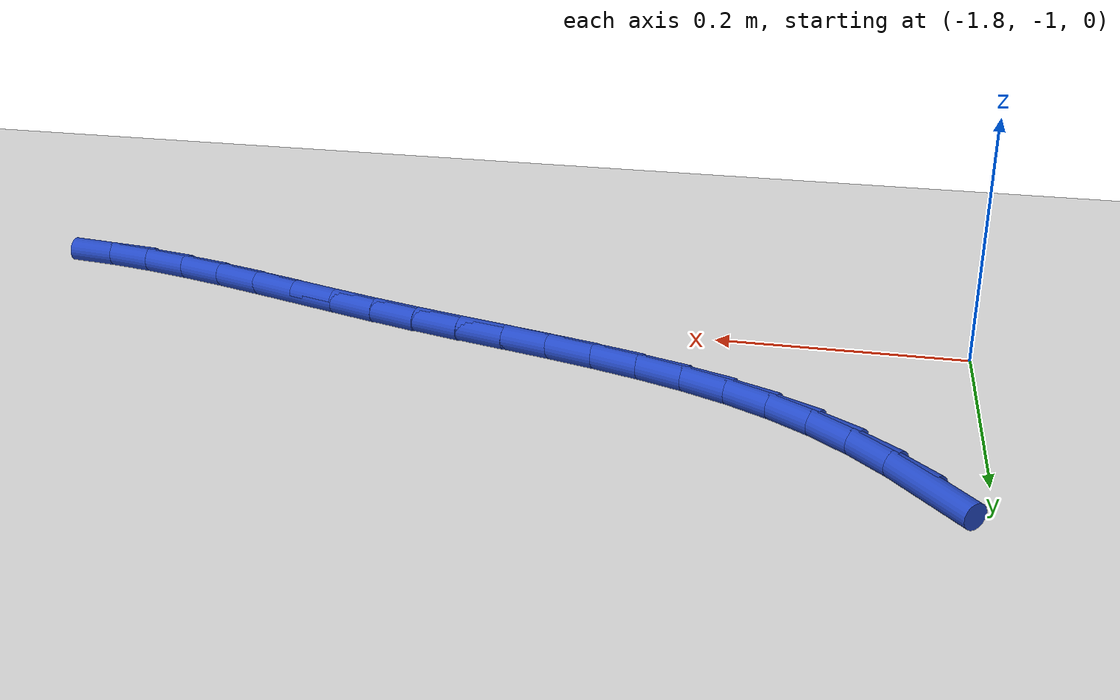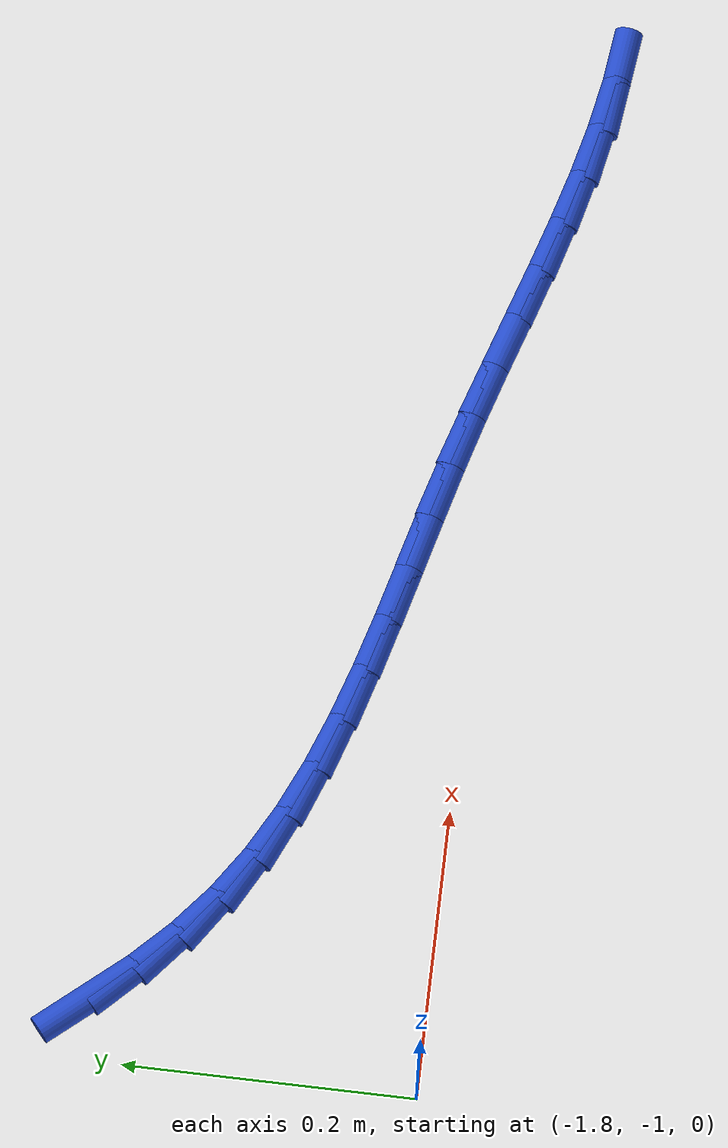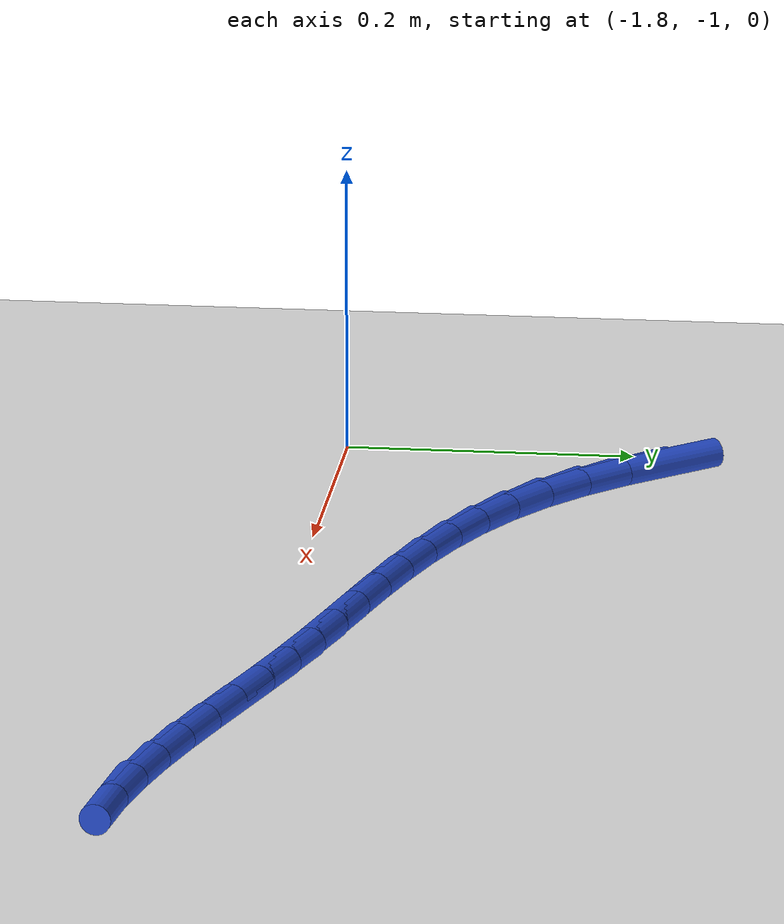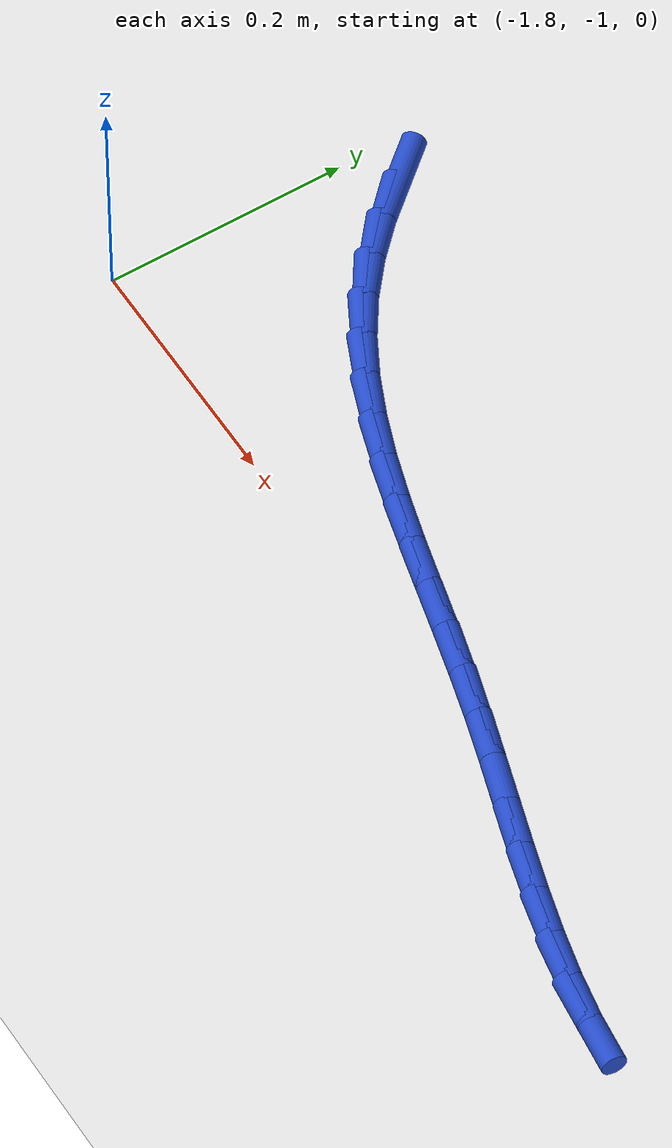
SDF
<sdf version="1.6">
 <world name="default">
  <model name="ground_plane">
   <static>1</static>
   <link name="link">
    <collision name="collision">
     <geometry><plane><normal>0 0 1</normal><size>100 100</size></plane></geometry>
     <surface><friction><ode><mu>100</mu><mu2>50</mu2></ode></friction></surface>
    </collision>
    <visual name="visual">
     <cast_shadows>0</cast_shadows>
     <geometry><plane><normal>0 0 1</normal><size>100 100</size></plane></geometry>
     <material>
      <script><uri>file://media/materials/scripts/gazebo.material</uri><name>Gazebo/WhiteGlow</name></script>
     </material>
    </visual>
   </link>
  </model>
  <model name="line">
   <link name="link_107">
    <pose>-1.7593202576052518 -0.7729438850754025 0.01 0 1.57 -0.8671494837575164</pose>
    <collision name="collision">
     <geometry><cylinder><radius>0.01</radius><length>0.08</length></cylinder></geometry>
    </collision>
    <visual name="visual">
     <material>
      <script><name>Gazebo/Blue</name><uri>file://media/materials/scripts/gazebo.material</uri></script>
     </material>
     <geometry><cylinder><radius>0.01</radius><length>0.08</length></cylinder></geometry>
    </visual>
   </link>
   <link name="link_108">
    <pose>-1.734723155450606 -0.8019313842486722 0.01 0 1.57 -0.7885267036382002</pose>
    <collision name="collision">
     <geometry><cylinder><radius>0.01</radius><length>0.08</length></cylinder></geometry>
    </collision>
    <visual name="visual">
     <material>
      <script><name>Gazebo/Blue</name><uri>file://media/materials/scripts/gazebo.material</uri></script>
     </material>
     <geometry><cylinder><radius>0.01</radius><length>0.08</length></cylinder></geometry>
    </visual>
   </link>
   <link name="link_109">
    <pose>-1.7083165814952357 -0.8285037053499026 0.01 0 1.57 -0.6968508318223158</pose>
    <collision name="collision">
     <geometry><cylinder><radius>0.01</radius><length>0.08</length></cylinder></geometry>
    </collision>
    <visual name="visual">
     <material>
      <script><name>Gazebo/Blue</name><uri>file://media/materials/scripts/gazebo.material</uri></script>
     </material>
     <geometry><cylinder><radius>0.01</radius><length>0.08</length></cylinder></geometry>
    </visual>
   </link>
   <link name="link_110">
    <pose>-1.6799209653211609 -0.8522685434170925 0.01 0 1.57 -0.595102702994514</pose>
    <collision name="collision">
     <geometry><cylinder><radius>0.01</radius><length>0.08</length></cylinder></geometry>
    </collision>
    <visual name="visual">
     <material>
      <script><name>Gazebo/Blue</name><uri>file://media/materials/scripts/gazebo.material</uri></script>
     </material>
     <geometry><cylinder><radius>0.01</radius><length>0.08</length></cylinder></geometry>
    </visual>
   </link>
   <link name="link_111">
    <pose>-1.649406792765001 -0.8729257629399314 0.01 0 1.57 -0.5013614318404778</pose>
    <collision name="collision">
     <geometry><cylinder><radius>0.01</radius><length>0.08</length></cylinder></geometry>
    </collision>
    <visual name="visual">
     <material>
      <script><name>Gazebo/Blue</name><uri>file://media/materials/scripts/gazebo.material</uri></script>
     </material>
     <geometry><cylinder><radius>0.01</radius><length>0.08</length></cylinder></geometry>
    </visual>
   </link>
   <link name="link_112">
    <pose>-1.6169402687808587 -0.8907197411594624 0.01 0 1.57 -0.4230816855681002</pose>
    <collision name="collision">
     <geometry><cylinder><radius>0.01</radius><length>0.08</length></cylinder></geometry>
    </collision>
    <visual name="visual">
     <material>
      <script><name>Gazebo/Blue</name><uri>file://media/materials/scripts/gazebo.material</uri></script>
     </material>
     <geometry><cylinder><radius>0.01</radius><length>0.08</length></cylinder></geometry>
    </visual>
   </link>
   <link name="link_113">
    <pose>-1.5827958068230235 -0.9060941015090525 0.01 0 1.57 -0.3604523344816767</pose>
    <collision name="collision">
     <geometry><cylinder><radius>0.01</radius><length>0.08</length></cylinder></geometry>
    </collision>
    <visual name="visual">
     <material>
      <script><name>Gazebo/Blue</name><uri>file://media/materials/scripts/gazebo.material</uri></script>
     </material>
     <geometry><cylinder><radius>0.01</radius><length>0.08</length></cylinder></geometry>
    </visual>
   </link>
   <link name="link_114">
    <pose>-1.5472479819223603 -0.9194927649358219 0.01 0 1.57 -0.31292404564521775</pose>
    <collision name="collision">
     <geometry><cylinder><radius>0.01</radius><length>0.08</length></cylinder></geometry>
    </collision>
    <visual name="visual">
     <material>
      <script><name>Gazebo/Blue</name><uri>file://media/materials/scripts/gazebo.material</uri></script>
     </material>
     <geometry><cylinder><radius>0.01</radius><length>0.08</length></cylinder></geometry>
    </visual>
   </link>
   <link name="link_115">
    <pose>-1.510571369109731 -0.9313596523868904 0.01 0 1.57 -0.2796771171483563</pose>
    <collision name="collision">
     <geometry><cylinder><radius>0.01</radius><length>0.08</length></cylinder></geometry>
    </collision>
    <visual name="visual">
     <material>
      <script><name>Gazebo/Blue</name><uri>file://media/materials/scripts/gazebo.material</uri></script>
     </material>
     <geometry><cylinder><radius>0.01</radius><length>0.08</length></cylinder></geometry>
    </visual>
   </link>
   <link name="link_116">
    <pose>-1.4730405434160012 -0.9421386848093779 0.01 0 1.57 -0.25992388668831495</pose>
    <collision name="collision">
     <geometry><cylinder><radius>0.01</radius><length>0.08</length></cylinder></geometry>
    </collision>
    <visual name="visual">
     <material>
      <script><name>Gazebo/Blue</name><uri>file://media/materials/scripts/gazebo.material</uri></script>
     </material>
     <geometry><cylinder><radius>0.01</radius><length>0.08</length></cylinder></geometry>
    </visual>
   </link>
   <link name="link_117">
    <pose>-1.434930079872033 -0.952273783150404 0.01 0 1.57 -0.25307651309367585</pose>
    <collision name="collision">
     <geometry><cylinder><radius>0.01</radius><length>0.08</length></cylinder></geometry>
    </collision>
    <visual name="visual">
     <material>
      <script><name>Gazebo/Blue</name><uri>file://media/materials/scripts/gazebo.material</uri></script>
     </material>
     <geometry><cylinder><radius>0.01</radius><length>0.08</length></cylinder></geometry>
    </visual>
   </link>
   <link name="link_118">
    <pose>-1.3965145535086911 -0.9622088683570886 0.01 0 1.57 -0.25882210482750806</pose>
    <collision name="collision">
     <geometry><cylinder><radius>0.01</radius><length>0.08</length></cylinder></geometry>
    </collision>
    <visual name="visual">
     <material>
      <script><name>Gazebo/Blue</name><uri>file://media/materials/scripts/gazebo.material</uri></script>
     </material>
     <geometry><cylinder><radius>0.01</radius><length>0.08</length></cylinder></geometry>
    </visual>
   </link>
   <link name="link_119">
    <pose>-1.358068539356838 -0.9723878613765516 0.01 0 1.57 -0.27702940010904253</pose>
    <collision name="collision">
     <geometry><cylinder><radius>0.01</radius><length>0.08</length></cylinder></geometry>
    </collision>
    <visual name="visual">
     <material>
      <script><name>Gazebo/Blue</name><uri>file://media/materials/scripts/gazebo.material</uri></script>
     </material>
     <geometry><cylinder><radius>0.01</radius><length>0.08</length></cylinder></geometry>
    </visual>
   </link>
   <link name="link_120">
    <pose>-1.3198650689488314 -0.9832506678591653 0.01 0 1.57 -0.29939945763503645</pose>
    <collision name="collision">
     <geometry><cylinder><radius>0.01</radius><length>0.08</length></cylinder></geometry>
    </collision>
    <visual name="visual">
     <material>
      <script><name>Gazebo/Blue</name><uri>file://media/materials/scripts/gazebo.material</uri></script>
     </material>
     <geometry><cylinder><radius>0.01</radius><length>0.08</length></cylinder></geometry>
    </visual>
   </link>
   <link name="link_121">
    <pose>-1.2820558421511568 -0.9949215581362101 0.01 0 1.57 -0.3115170485855191</pose>
    <collision name="collision">
     <geometry><cylinder><radius>0.01</radius><length>0.08</length></cylinder></geometry>
    </collision>
    <visual name="visual">
     <material>
      <script><name>Gazebo/Blue</name><uri>file://media/materials/scripts/gazebo.material</uri></script>
     </material>
     <geometry><cylinder><radius>0.01</radius><length>0.08</length></cylinder></geometry>
    </visual>
   </link>
   <link name="link_122">
    <pose>-1.2445858053318375 -1.0069869486655278 0.01 0 1.57 -0.31184478336548294</pose>
    <collision name="collision">
     <geometry><cylinder><radius>0.01</radius><length>0.08</length></cylinder></geometry>
    </collision>
    <visual name="visual">
     <material>
      <script><name>Gazebo/Blue</name><uri>file://media/materials/scripts/gazebo.material</uri></script>
     </material>
     <geometry><cylinder><radius>0.01</radius><length>0.08</length></cylinder></geometry>
    </visual>
   </link>
   <link name="link_123">
    <pose>-1.2073797403508997 -1.0189807994347533 0.01 0 1.57 -0.3001349753101482</pose>
    <collision name="collision">
     <geometry><cylinder><radius>0.01</radius><length>0.08</length></cylinder></geometry>
    </collision>
    <visual name="visual">
     <material>
      <script><name>Gazebo/Blue</name><uri>file://media/materials/scripts/gazebo.material</uri></script>
     </material>
     <geometry><cylinder><radius>0.01</radius><length>0.08</length></cylinder></geometry>
    </visual>
   </link>
   <link name="link_124">
    <pose>-1.1703624290683676 -1.0304370704315184 0.01 0 1.57 -0.27601126633741385</pose>
    <collision name="collision">
     <geometry><cylinder><radius>0.01</radius><length>0.08</length></cylinder></geometry>
    </collision>
    <visual name="visual">
     <material>
      <script><name>Gazebo/Blue</name><uri>file://media/materials/scripts/gazebo.material</uri></script>
     </material>
     <geometry><cylinder><radius>0.01</radius><length>0.08</length></cylinder></geometry>
    </visual>
   </link>
   <link name="link_125">
    <pose>-1.1334586533442668 -1.040889721643456 0.01 0 1.57 -0.23901182101261742</pose>
    <collision name="collision">
     <geometry><cylinder><radius>0.01</radius><length>0.08</length></cylinder></geometry>
    </collision>
    <visual name="visual">
     <material>
      <script><name>Gazebo/Blue</name><uri>file://media/materials/scripts/gazebo.material</uri></script>
     </material>
     <geometry><cylinder><radius>0.01</radius><length>0.08</length></cylinder></geometry>
    </visual>
   </link>
   <link name="link_126">
    <pose>-1.0965931950386214 -1.0498727130581995 0.01 0 1.57 -0.18869924043085431</pose>
    <collision name="collision">
     <geometry><cylinder><radius>0.01</radius><length>0.08</length></cylinder></geometry>
    </collision>
    <visual name="visual">
     <material>
      <script><name>Gazebo/Blue</name><uri>file://media/materials/scripts/gazebo.material</uri></script>
     </material>
     <geometry><cylinder><radius>0.01</radius><length>0.08</length></cylinder></geometry>
    </visual>
   </link>
   <link name="link_127">
    <pose>-1.0596908360114579 -1.056920004663381 0.01 0 1.57 -0.12485351722108198</pose>
    <collision name="collision">
     <geometry><cylinder><radius>0.01</radius><length>0.08</length></cylinder></geometry>
    </collision>
    <visual name="visual">
     <material>
      <script><name>Gazebo/Blue</name><uri>file://media/materials/scripts/gazebo.material</uri></script>
     </material>
     <geometry><cylinder><radius>0.01</radius><length>0.08</length></cylinder></geometry>
    </visual>
   </link>
  </model>
 </world>
</sdf>
